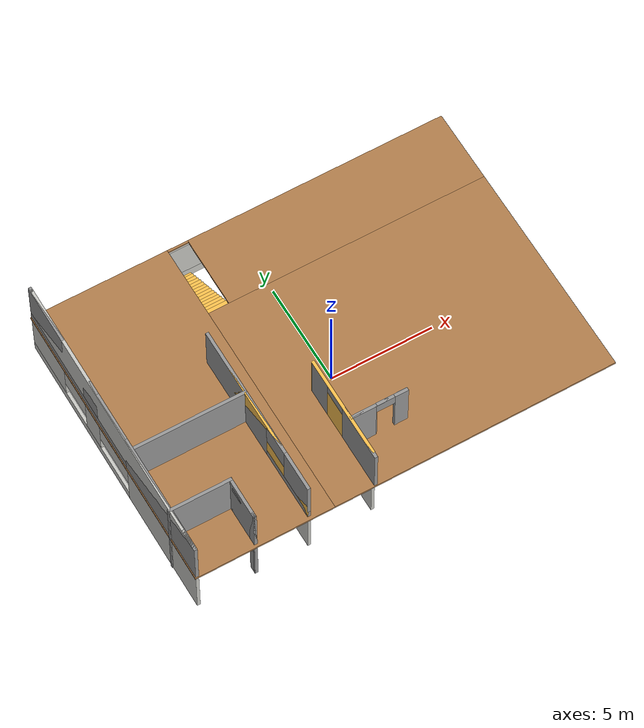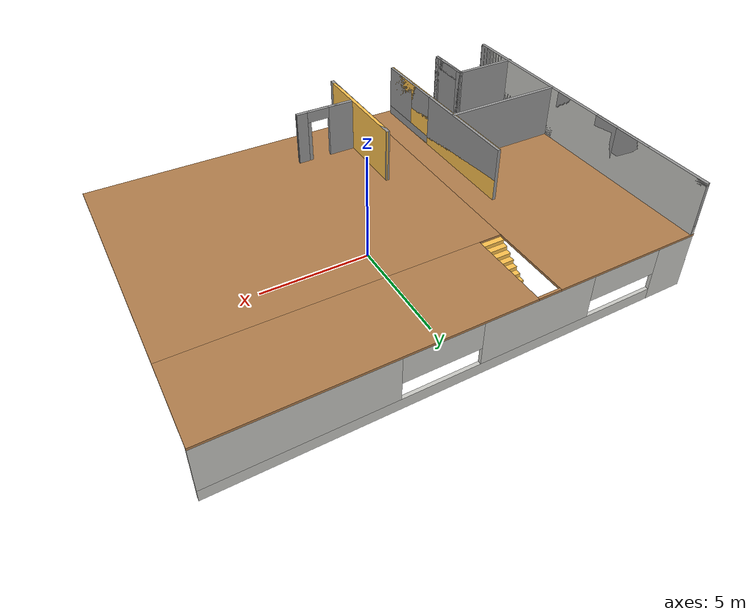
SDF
<sdf version="1.6">
 <model name="myProjectBuilding">
  <pose>-0.140832 0.553642 0 0 -0 0</pose>
  <link name="Floor_0">
   <pose>-0 -1e-06 2.5 0 -0 0</pose>
   <visual name="Floor_0_Visual_0">
    <pose>-6.8354 0 0.05 0 -0 0</pose>
    <geometry><box><size>6.61888 14.2917 0.1</size></box></geometry>
    <material>
     <script><uri>file://media/materials/scripts/gazebo.material</uri><name>Gazebo/Wood</name></script>
     <ambient>1 1 1 1</ambient>
    </material>
    <meta><layer>1</layer></meta>
   </visual>
   <collision name="Floor_0_Collision_0">
    <geometry><box><size>6.61888 14.2917 0.1</size></box></geometry>
    <pose>-6.8354 0 0.05 0 -0 0</pose>
   </collision>
   <visual name="Floor_0_Visual_1">
    <pose>3.30944 -1.80065 0.05 0 -0 0</pose>
    <geometry><box><size>13.6708 10.6904 0.1</size></box></geometry>
    <material>
     <script><uri>file://media/materials/scripts/gazebo.material</uri><name>Gazebo/Wood</name></script>
     <ambient>1 1 1 1</ambient>
    </material>
    <meta><layer>1</layer></meta>
   </visual>
   <collision name="Floor_0_Collision_1">
    <geometry><box><size>13.6708 10.6904 0.1</size></box></geometry>
    <pose>3.30944 -1.80065 0.05 0 -0 0</pose>
   </collision>
   <visual name="Floor_0_Visual_2">
    <pose>3.80944 5.3452 0.05 0 -0 0</pose>
    <geometry><box><size>12.6708 3.6013 0.1</size></box></geometry>
    <material>
     <script><uri>file://media/materials/scripts/gazebo.material</uri><name>Gazebo/Wood</name></script>
     <ambient>1 1 1 1</ambient>
    </material>
    <meta><layer>1</layer></meta>
   </visual>
   <collision name="Floor_0_Collision_2">
    <geometry><box><size>12.6708 3.6013 0.1</size></box></geometry>
    <pose>3.80944 5.3452 0.05 0 -0 0</pose>
   </collision>
   <visual name="Floor_0_Visual_3">
    <pose>-3.02596 7.0952 0.05 0 -0 0</pose>
    <geometry><box><size>1 0.101297 0.1</size></box></geometry>
    <material>
     <script><uri>file://media/materials/scripts/gazebo.material</uri><name>Gazebo/Wood</name></script>
     <ambient>1 1 1 1</ambient>
    </material>
    <meta><layer>1</layer></meta>
   </visual>
   <collision name="Floor_0_Collision_3">
    <geometry><box><size>1 0.101297 0.1</size></box></geometry>
    <pose>-3.02596 7.0952 0.05 0 -0 0</pose>
   </collision>
  </link>
  <link name="Stairs_0">
   <visual name="Stairs_0_Visual_0">
    <pose>-3.02596 6.92788 0.083333 0 -0 0</pose>
    <geometry><box><size>1 0.233333 0.166667</size></box></geometry>
    <material>
     <script><uri>file://media/materials/scripts/gazebo.material</uri><name>Gazebo/Grey</name></script>
     <ambient>1 0.764706 0.305882 1</ambient>
    </material>
    <meta><layer>0</layer></meta>
   </visual>
   <collision name="Stairs_0_Collision_0">
    <geometry><box><size>1 0.233333 0.166667</size></box></geometry>
    <pose>-3.02596 6.92788 0.083333 0 -0 0</pose>
   </collision>
   <visual name="Stairs_0_Visual_1">
    <pose>-3.02596 6.69455 0.25 0 -0 0</pose>
    <geometry><box><size>1 0.233333 0.166667</size></box></geometry>
    <material>
     <script><uri>file://media/materials/scripts/gazebo.material</uri><name>Gazebo/Grey</name></script>
     <ambient>1 0.764706 0.305882 1</ambient>
    </material>
    <meta><layer>0</layer></meta>
   </visual>
   <collision name="Stairs_0_Collision_1">
    <geometry><box><size>1 0.233333 0.166667</size></box></geometry>
    <pose>-3.02596 6.69455 0.25 0 -0 0</pose>
   </collision>
   <visual name="Stairs_0_Visual_2">
    <pose>-3.02596 6.46122 0.416667 0 -0 0</pose>
    <geometry><box><size>1 0.233333 0.166667</size></box></geometry>
    <material>
     <script><uri>file://media/materials/scripts/gazebo.material</uri><name>Gazebo/Grey</name></script>
     <ambient>1 0.764706 0.305882 1</ambient>
    </material>
    <meta><layer>0</layer></meta>
   </visual>
   <collision name="Stairs_0_Collision_2">
    <geometry><box><size>1 0.233333 0.166667</size></box></geometry>
    <pose>-3.02596 6.46122 0.416667 0 -0 0</pose>
   </collision>
   <visual name="Stairs_0_Visual_3">
    <pose>-3.02596 6.22788 0.583333 0 -0 0</pose>
    <geometry><box><size>1 0.233333 0.166667</size></box></geometry>
    <material>
     <script><uri>file://media/materials/scripts/gazebo.material</uri><name>Gazebo/Grey</name></script>
     <ambient>1 0.764706 0.305882 1</ambient>
    </material>
    <meta><layer>0</layer></meta>
   </visual>
   <collision name="Stairs_0_Collision_3">
    <geometry><box><size>1 0.233333 0.166667</size></box></geometry>
    <pose>-3.02596 6.22788 0.583333 0 -0 0</pose>
   </collision>
   <visual name="Stairs_0_Visual_4">
    <pose>-3.02596 5.99455 0.75 0 -0 0</pose>
    <geometry><box><size>1 0.233333 0.166667</size></box></geometry>
    <material>
     <script><uri>file://media/materials/scripts/gazebo.material</uri><name>Gazebo/Grey</name></script>
     <ambient>1 0.764706 0.305882 1</ambient>
    </material>
    <meta><layer>0</layer></meta>
   </visual>
   <collision name="Stairs_0_Collision_4">
    <geometry><box><size>1 0.233333 0.166667</size></box></geometry>
    <pose>-3.02596 5.99455 0.75 0 -0 0</pose>
   </collision>
   <visual name="Stairs_0_Visual_5">
    <pose>-3.02596 5.76122 0.916667 0 -0 0</pose>
    <geometry><box><size>1 0.233333 0.166667</size></box></geometry>
    <material>
     <script><uri>file://media/materials/scripts/gazebo.material</uri><name>Gazebo/Grey</name></script>
     <ambient>1 0.764706 0.305882 1</ambient>
    </material>
    <meta><layer>0</layer></meta>
   </visual>
   <collision name="Stairs_0_Collision_5">
    <geometry><box><size>1 0.233333 0.166667</size></box></geometry>
    <pose>-3.02596 5.76122 0.916667 0 -0 0</pose>
   </collision>
   <visual name="Stairs_0_Visual_6">
    <pose>-3.02596 5.52788 1.08333 0 -0 0</pose>
    <geometry><box><size>1 0.233333 0.166667</size></box></geometry>
    <material>
     <script><uri>file://media/materials/scripts/gazebo.material</uri><name>Gazebo/Grey</name></script>
     <ambient>1 0.764706 0.305882 1</ambient>
    </material>
    <meta><layer>0</layer></meta>
   </visual>
   <collision name="Stairs_0_Collision_6">
    <geometry><box><size>1 0.233333 0.166667</size></box></geometry>
    <pose>-3.02596 5.52788 1.08333 0 -0 0</pose>
   </collision>
   <visual name="Stairs_0_Visual_7">
    <pose>-3.02596 5.29455 1.25 0 -0 0</pose>
    <geometry><box><size>1 0.233333 0.166667</size></box></geometry>
    <material>
     <script><uri>file://media/materials/scripts/gazebo.material</uri><name>Gazebo/Grey</name></script>
     <ambient>1 0.764706 0.305882 1</ambient>
    </material>
    <meta><layer>0</layer></meta>
   </visual>
   <collision name="Stairs_0_Collision_7">
    <geometry><box><size>1 0.233333 0.166667</size></box></geometry>
    <pose>-3.02596 5.29455 1.25 0 -0 0</pose>
   </collision>
   <visual name="Stairs_0_Visual_8">
    <pose>-3.02596 5.06122 1.41667 0 -0 0</pose>
    <geometry><box><size>1 0.233333 0.166667</size></box></geometry>
    <material>
     <script><uri>file://media/materials/scripts/gazebo.material</uri><name>Gazebo/Grey</name></script>
     <ambient>1 0.764706 0.305882 1</ambient>
    </material>
    <meta><layer>0</layer></meta>
   </visual>
   <collision name="Stairs_0_Collision_8">
    <geometry><box><size>1 0.233333 0.166667</size></box></geometry>
    <pose>-3.02596 5.06122 1.41667 0 -0 0</pose>
   </collision>
   <visual name="Stairs_0_Visual_9">
    <pose>-3.02596 4.82788 1.58333 0 -0 0</pose>
    <geometry><box><size>1 0.233333 0.166667</size></box></geometry>
    <material>
     <script><uri>file://media/materials/scripts/gazebo.material</uri><name>Gazebo/Grey</name></script>
     <ambient>1 0.764706 0.305882 1</ambient>
    </material>
    <meta><layer>0</layer></meta>
   </visual>
   <collision name="Stairs_0_Collision_9">
    <geometry><box><size>1 0.233333 0.166667</size></box></geometry>
    <pose>-3.02596 4.82788 1.58333 0 -0 0</pose>
   </collision>
   <visual name="Stairs_0_Visual_10">
    <pose>-3.02596 4.59455 1.75 0 -0 0</pose>
    <geometry><box><size>1 0.233333 0.166667</size></box></geometry>
    <material>
     <script><uri>file://media/materials/scripts/gazebo.material</uri><name>Gazebo/Grey</name></script>
     <ambient>1 0.764706 0.305882 1</ambient>
    </material>
    <meta><layer>0</layer></meta>
   </visual>
   <collision name="Stairs_0_Collision_10">
    <geometry><box><size>1 0.233333 0.166667</size></box></geometry>
    <pose>-3.02596 4.59455 1.75 0 -0 0</pose>
   </collision>
   <visual name="Stairs_0_Visual_11">
    <pose>-3.02596 4.36122 1.91667 0 -0 0</pose>
    <geometry><box><size>1 0.233333 0.166667</size></box></geometry>
    <material>
     <script><uri>file://media/materials/scripts/gazebo.material</uri><name>Gazebo/Grey</name></script>
     <ambient>1 0.764706 0.305882 1</ambient>
    </material>
    <meta><layer>0</layer></meta>
   </visual>
   <collision name="Stairs_0_Collision_11">
    <geometry><box><size>1 0.233333 0.166667</size></box></geometry>
    <pose>-3.02596 4.36122 1.91667 0 -0 0</pose>
   </collision>
   <visual name="Stairs_0_Visual_12">
    <pose>-3.02596 4.12788 2.08333 0 -0 0</pose>
    <geometry><box><size>1 0.233333 0.166667</size></box></geometry>
    <material>
     <script><uri>file://media/materials/scripts/gazebo.material</uri><name>Gazebo/Grey</name></script>
     <ambient>1 0.764706 0.305882 1</ambient>
    </material>
    <meta><layer>0</layer></meta>
   </visual>
   <collision name="Stairs_0_Collision_12">
    <geometry><box><size>1 0.233333 0.166667</size></box></geometry>
    <pose>-3.02596 4.12788 2.08333 0 -0 0</pose>
   </collision>
   <visual name="Stairs_0_Visual_13">
    <pose>-3.02596 3.89455 2.25 0 -0 0</pose>
    <geometry><box><size>1 0.233333 0.166667</size></box></geometry>
    <material>
     <script><uri>file://media/materials/scripts/gazebo.material</uri><name>Gazebo/Grey</name></script>
     <ambient>1 0.764706 0.305882 1</ambient>
    </material>
    <meta><layer>0</layer></meta>
   </visual>
   <collision name="Stairs_0_Collision_13">
    <geometry><box><size>1 0.233333 0.166667</size></box></geometry>
    <pose>-3.02596 3.89455 2.25 0 -0 0</pose>
   </collision>
   <visual name="Stairs_0_Visual_14">
    <pose>-3.02596 3.66122 2.41667 0 -0 0</pose>
    <geometry><box><size>1 0.233333 0.166667</size></box></geometry>
    <material>
     <script><uri>file://media/materials/scripts/gazebo.material</uri><name>Gazebo/Grey</name></script>
     <ambient>1 0.764706 0.305882 1</ambient>
    </material>
    <meta><layer>0</layer></meta>
   </visual>
   <collision name="Stairs_0_Collision_14">
    <geometry><box><size>1 0.233333 0.166667</size></box></geometry>
    <pose>-3.02596 3.66122 2.41667 0 -0 0</pose>
   </collision>
  </link>
  <link name="Wall_0">
   <pose>0.019837 7.07085 0 0 -0 0</pose>
   <visual name="Wall_0_Visual_0">
    <pose>-9.23411 0 1.25 0 -0 0</pose>
    <geometry><box><size>1.78178 0.15 2.5</size></box></geometry>
    <material>
     <script><uri>file://media/materials/scripts/gazebo.material</uri><name>Gazebo/CeilingTiled</name></script>
     <ambient>1 1 1 1</ambient>
    </material>
    <meta><layer>0</layer></meta>
   </visual>
   <collision name="Wall_0_Collision_0">
    <geometry><box><size>1.78178 0.15 2.5</size></box></geometry>
    <pose>-9.23411 0 1.25 0 -0 0</pose>
   </collision>
   <visual name="Wall_0_Visual_1">
    <pose>0.890889 0 0.25 0 -0 0</pose>
    <geometry><box><size>18.4682 0.15 0.5</size></box></geometry>
    <material>
     <script><uri>file://media/materials/scripts/gazebo.material</uri><name>Gazebo/CeilingTiled</name></script>
     <ambient>1 1 1 1</ambient>
    </material>
    <meta><layer>0</layer></meta>
   </visual>
   <collision name="Wall_0_Collision_1">
    <geometry><box><size>18.4682 0.15 0.5</size></box></geometry>
    <pose>0.890889 0 0.25 0 -0 0</pose>
   </collision>
   <visual name="Wall_0_Visual_2">
    <pose>-2.70341 0 1.5 0 -0 0</pose>
    <geometry><box><size>4.90672 0.15 2</size></box></geometry>
    <material>
     <script><uri>file://media/materials/scripts/gazebo.material</uri><name>Gazebo/CeilingTiled</name></script>
     <ambient>1 1 1 1</ambient>
    </material>
    <meta><layer>0</layer></meta>
   </visual>
   <collision name="Wall_0_Collision_2">
    <geometry><box><size>4.90672 0.15 2</size></box></geometry>
    <pose>-2.70341 0 1.5 0 -0 0</pose>
   </collision>
   <visual name="Wall_0_Visual_3">
    <pose>6.55664 0 1.5 0 -0 0</pose>
    <geometry><box><size>7.13672 0.15 2</size></box></geometry>
    <material>
     <script><uri>file://media/materials/scripts/gazebo.material</uri><name>Gazebo/CeilingTiled</name></script>
     <ambient>1 1 1 1</ambient>
    </material>
    <meta><layer>0</layer></meta>
   </visual>
   <collision name="Wall_0_Collision_3">
    <geometry><box><size>7.13672 0.15 2</size></box></geometry>
    <pose>6.55664 0 1.5 0 -0 0</pose>
   </collision>
   <visual name="Wall_0_Visual_4">
    <pose>-6.75 0 1.9 0 -0 0</pose>
    <geometry><box><size>3.18645 0.15 1.2</size></box></geometry>
    <material>
     <script><uri>file://media/materials/scripts/gazebo.material</uri><name>Gazebo/CeilingTiled</name></script>
     <ambient>1 1 1 1</ambient>
    </material>
    <meta><layer>0</layer></meta>
   </visual>
   <collision name="Wall_0_Collision_4">
    <geometry><box><size>3.18645 0.15 1.2</size></box></geometry>
    <pose>-6.75 0 1.9 0 -0 0</pose>
   </collision>
   <visual name="Wall_0_Visual_5">
    <pose>1.36912 0 1.9 0 -0 0</pose>
    <geometry><box><size>3.23833 0.15 1.2</size></box></geometry>
    <material>
     <script><uri>file://media/materials/scripts/gazebo.material</uri><name>Gazebo/CeilingTiled</name></script>
     <ambient>1 1 1 1</ambient>
    </material>
    <meta><layer>0</layer></meta>
   </visual>
   <collision name="Wall_0_Collision_5">
    <geometry><box><size>3.23833 0.15 1.2</size></box></geometry>
    <pose>1.36912 0 1.9 0 -0 0</pose>
   </collision>
  </link>
  <link name="Wall_106">
   <pose>-10.0302 0.020848 2.5 0 -0 1.5708</pose>
   <visual name="Wall_106_Visual_0">
    <pose>-4.18101 0 1.25 0 -0 0</pose>
    <geometry><box><size>5.88798 0.15 2.5</size></box></geometry>
    <material>
     <script><uri>file://media/materials/scripts/gazebo.material</uri><name>Gazebo/Grey</name></script>
     <ambient>1 1 1 1</ambient>
    </material>
    <meta><layer>1</layer></meta>
   </visual>
   <collision name="Wall_106_Collision_0">
    <geometry><box><size>5.88798 0.15 2.5</size></box></geometry>
    <pose>-4.18101 0 1.25 0 -0 0</pose>
   </collision>
   <visual name="Wall_106_Visual_1">
    <pose>2.94399 0 0.25 0 -0 0</pose>
    <geometry><box><size>8.36202 0.15 0.5</size></box></geometry>
    <material>
     <script><uri>file://media/materials/scripts/gazebo.material</uri><name>Gazebo/Grey</name></script>
     <ambient>1 1 1 1</ambient>
    </material>
    <meta><layer>1</layer></meta>
   </visual>
   <collision name="Wall_106_Collision_1">
    <geometry><box><size>8.36202 0.15 0.5</size></box></geometry>
    <pose>2.94399 0 0.25 0 -0 0</pose>
   </collision>
   <visual name="Wall_106_Visual_2">
    <pose>1.81803 0 1.5 0 -0 0</pose>
    <geometry><box><size>1.21997 0.15 2</size></box></geometry>
    <material>
     <script><uri>file://media/materials/scripts/gazebo.material</uri><name>Gazebo/Grey</name></script>
     <ambient>1 1 1 1</ambient>
    </material>
    <meta><layer>1</layer></meta>
   </visual>
   <collision name="Wall_106_Collision_2">
    <geometry><box><size>1.21997 0.15 2</size></box></geometry>
    <pose>1.81803 0 1.5 0 -0 0</pose>
   </collision>
   <visual name="Wall_106_Visual_3">
    <pose>5.65137 0 1.5 0 -0 0</pose>
    <geometry><box><size>2.94726 0.15 2</size></box></geometry>
    <material>
     <script><uri>file://media/materials/scripts/gazebo.material</uri><name>Gazebo/Grey</name></script>
     <ambient>1 1 1 1</ambient>
    </material>
    <meta><layer>1</layer></meta>
   </visual>
   <collision name="Wall_106_Collision_3">
    <geometry><box><size>2.94726 0.15 2</size></box></geometry>
    <pose>5.65137 0 1.5 0 -0 0</pose>
   </collision>
   <visual name="Wall_106_Visual_4">
    <pose>-0.014489 0 1.9 0 -0 0</pose>
    <geometry><box><size>2.44507 0.15 1.2</size></box></geometry>
    <material>
     <script><uri>file://media/materials/scripts/gazebo.material</uri><name>Gazebo/Grey</name></script>
     <ambient>1 1 1 1</ambient>
    </material>
    <meta><layer>1</layer></meta>
   </visual>
   <collision name="Wall_106_Collision_4">
    <geometry><box><size>2.44507 0.15 1.2</size></box></geometry>
    <pose>-0.014489 0 1.9 0 -0 0</pose>
   </collision>
   <visual name="Wall_106_Visual_5">
    <pose>3.30288 0 1.9 0 -0 0</pose>
    <geometry><box><size>1.74973 0.15 1.2</size></box></geometry>
    <material>
     <script><uri>file://media/materials/scripts/gazebo.material</uri><name>Gazebo/Grey</name></script>
     <ambient>1 1 1 1</ambient>
    </material>
    <meta><layer>1</layer></meta>
   </visual>
   <collision name="Wall_106_Collision_5">
    <geometry><box><size>1.74973 0.15 1.2</size></box></geometry>
    <pose>3.30288 0 1.9 0 -0 0</pose>
   </collision>
  </link>
  <link name="Wall_108">
   <collision name="Wall_108_Collision">
    <geometry><box><size>5.5 0.15 2.5</size></box></geometry>
    <pose>0 0 1.25 0 -0 0</pose>
   </collision>
   <visual name="Wall_108_Visual">
    <pose>0 0 1.25 0 -0 0</pose>
    <geometry><box><size>5.5 0.15 2.5</size></box></geometry>
    <material>
     <script><uri>file://media/materials/scripts/gazebo.material</uri><name>Gazebo/Grey</name></script>
     <ambient>1 1 1 1</ambient>
    </material>
    <meta><layer>1</layer></meta>
   </visual>
   <pose>-7.35516 -1.737 2.5 0 -0 0</pose>
  </link>
  <link name="Wall_110">
   <pose>-4.67404 -2.738 2.5 0 -0 -1.5708</pose>
   <visual name="Wall_110_Visual_0">
    <pose>-1.69288 0 1.25 0 -0 0</pose>
    <geometry><box><size>5.11425 0.15 2.5</size></box></geometry>
    <material>
     <script><uri>file://media/materials/scripts/gazebo.material</uri><name>Gazebo/Grey</name></script>
     <ambient>1 1 1 1</ambient>
    </material>
    <meta><layer>1</layer></meta>
   </visual>
   <collision name="Wall_110_Collision_0">
    <geometry><box><size>5.11425 0.15 2.5</size></box></geometry>
    <pose>-1.69288 0 1.25 0 -0 0</pose>
   </collision>
   <visual name="Wall_110_Visual_1">
    <pose>2.55712 0 0.25 0 -0 0</pose>
    <geometry><box><size>3.38576 0.15 0.5</size></box></geometry>
    <material>
     <script><uri>file://media/materials/scripts/gazebo.material</uri><name>Gazebo/Grey</name></script>
     <ambient>1 1 1 1</ambient>
    </material>
    <meta><layer>1</layer></meta>
   </visual>
   <collision name="Wall_110_Collision_1">
    <geometry><box><size>3.38576 0.15 0.5</size></box></geometry>
    <pose>2.55712 0 0.25 0 -0 0</pose>
   </collision>
   <visual name="Wall_110_Visual_2">
    <pose>3.27954 0 1.5 0 -0 0</pose>
    <geometry><box><size>1.94093 0.15 2</size></box></geometry>
    <material>
     <script><uri>file://media/materials/scripts/gazebo.material</uri><name>Gazebo/Grey</name></script>
     <ambient>1 1 1 1</ambient>
    </material>
    <meta><layer>1</layer></meta>
   </visual>
   <collision name="Wall_110_Collision_2">
    <geometry><box><size>1.94093 0.15 2</size></box></geometry>
    <pose>3.27954 0 1.5 0 -0 0</pose>
   </collision>
   <visual name="Wall_110_Visual_3">
    <pose>1.58666 0 1.9 0 -0 0</pose>
    <geometry><box><size>1.44483 0.15 1.2</size></box></geometry>
    <material>
     <script><uri>file://media/materials/scripts/gazebo.material</uri><name>Gazebo/Grey</name></script>
     <ambient>1 1 1 1</ambient>
    </material>
    <meta><layer>1</layer></meta>
   </visual>
   <collision name="Wall_110_Collision_3">
    <geometry><box><size>1.44483 0.15 1.2</size></box></geometry>
    <pose>1.58666 0 1.9 0 -0 0</pose>
   </collision>
  </link>
  <link name="Wall_121">
   <pose>-1.54759 -4.48189 2.5 0 -0 1.5677</pose>
   <visual name="Wall_121_Visual_0">
    <pose>-1.28929 0 1.25 0 -0 0</pose>
    <geometry><box><size>2.66447 0.15 2.5</size></box></geometry>
    <material>
     <script><uri>file://media/materials/scripts/gazebo.material</uri><name>Gazebo/Grey</name></script>
     <ambient>1 1 1 1</ambient>
    </material>
    <meta><layer>1</layer></meta>
   </visual>
   <collision name="Wall_121_Collision_0">
    <geometry><box><size>2.66447 0.15 2.5</size></box></geometry>
    <pose>-1.28929 0 1.25 0 -0 0</pose>
   </collision>
   <visual name="Wall_121_Visual_1">
    <pose>1.94538 0 1.25 0 -0 0</pose>
    <geometry><box><size>1.35229 0.15 2.5</size></box></geometry>
    <material>
     <script><uri>file://media/materials/scripts/gazebo.material</uri><name>Gazebo/Grey</name></script>
     <ambient>1 1 1 1</ambient>
    </material>
    <meta><layer>1</layer></meta>
   </visual>
   <collision name="Wall_121_Collision_1">
    <geometry><box><size>1.35229 0.15 2.5</size></box></geometry>
    <pose>1.94538 0 1.25 0 -0 0</pose>
   </collision>
   <visual name="Wall_121_Visual_2">
    <pose>0.656093 0 2.25 0 -0 0</pose>
    <geometry><box><size>1.22628 0.15 0.5</size></box></geometry>
    <material>
     <script><uri>file://media/materials/scripts/gazebo.material</uri><name>Gazebo/Grey</name></script>
     <ambient>1 1 1 1</ambient>
    </material>
    <meta><layer>1</layer></meta>
   </visual>
   <collision name="Wall_121_Collision_2">
    <geometry><box><size>1.22628 0.15 0.5</size></box></geometry>
    <pose>0.656093 0 2.25 0 -0 0</pose>
   </collision>
  </link>
  <link name="Wall_132">
   <collision name="Wall_132_Collision">
    <geometry><box><size>3 0.15 2.5</size></box></geometry>
    <pose>0 0 1.25 0 -0 0</pose>
   </collision>
   <visual name="Wall_132_Visual">
    <pose>0 0 1.25 0 -0 0</pose>
    <geometry><box><size>3 0.15 2.5</size></box></geometry>
    <material>
     <script><uri>file://media/materials/scripts/gazebo.material</uri><name>Gazebo/Grey</name></script>
     <ambient>1 1 1 1</ambient>
    </material>
    <meta><layer>1</layer></meta>
   </visual>
   <pose>-8.64484 -4.99035 2.5 0 -0 0</pose>
  </link>
  <link name="Wall_133">
   <pose>-7.21984 -5.96535 2.5 0 -0 -1.5708</pose>
   <visual name="Wall_133_Visual_0">
    <pose>-0.897514 0 1.25 0 -0 0</pose>
    <geometry><box><size>0.304972 0.15 2.5</size></box></geometry>
    <material>
     <script><uri>file://media/materials/scripts/gazebo.material</uri><name>Gazebo/Grey</name></script>
     <ambient>1 1 1 1</ambient>
    </material>
    <meta><layer>1</layer></meta>
   </visual>
   <collision name="Wall_133_Collision_0">
    <geometry><box><size>0.304972 0.15 2.5</size></box></geometry>
    <pose>-0.897514 0 1.25 0 -0 0</pose>
   </collision>
   <visual name="Wall_133_Visual_1">
    <pose>0.869252 0 1.25 0 -0 0</pose>
    <geometry><box><size>0.361497 0.15 2.5</size></box></geometry>
    <material>
     <script><uri>file://media/materials/scripts/gazebo.material</uri><name>Gazebo/Grey</name></script>
     <ambient>1 1 1 1</ambient>
    </material>
    <meta><layer>1</layer></meta>
   </visual>
   <collision name="Wall_133_Collision_1">
    <geometry><box><size>0.361497 0.15 2.5</size></box></geometry>
    <pose>0.869252 0 1.25 0 -0 0</pose>
   </collision>
   <visual name="Wall_133_Visual_2">
    <pose>-0.028262 0 2.25 0 -0 0</pose>
    <geometry><box><size>1.43353 0.15 0.5</size></box></geometry>
    <material>
     <script><uri>file://media/materials/scripts/gazebo.material</uri><name>Gazebo/Grey</name></script>
     <ambient>1 1 1 1</ambient>
    </material>
    <meta><layer>1</layer></meta>
   </visual>
   <collision name="Wall_133_Collision_2">
    <geometry><box><size>1.43353 0.15 0.5</size></box></geometry>
    <pose>-0.028262 0 2.25 0 -0 0</pose>
   </collision>
  </link>
  <link name="Wall_135">
   <pose>-0.170115 -4.97572 2.5 0 -0 0.003751</pose>
   <visual name="Wall_135_Visual_0">
    <pose>-0.755146 0 1.25 0 -0 0</pose>
    <geometry><box><size>1.23971 0.15 2.5</size></box></geometry>
    <material>
     <script><uri>file://media/materials/scripts/gazebo.material</uri><name>Gazebo/Grey</name></script>
     <ambient>1 1 1 1</ambient>
    </material>
    <meta><layer>1</layer></meta>
   </visual>
   <collision name="Wall_135_Collision_0">
    <geometry><box><size>1.23971 0.15 2.5</size></box></geometry>
    <pose>-0.755146 0 1.25 0 -0 0</pose>
   </collision>
   <visual name="Wall_135_Visual_1">
    <pose>1.12918 0 1.25 0 -0 0</pose>
    <geometry><box><size>0.491644 0.15 2.5</size></box></geometry>
    <material>
     <script><uri>file://media/materials/scripts/gazebo.material</uri><name>Gazebo/Grey</name></script>
     <ambient>1 1 1 1</ambient>
    </material>
    <meta><layer>1</layer></meta>
   </visual>
   <collision name="Wall_135_Collision_1">
    <geometry><box><size>0.491644 0.15 2.5</size></box></geometry>
    <pose>1.12918 0 1.25 0 -0 0</pose>
   </collision>
   <visual name="Wall_135_Visual_2">
    <pose>0.374032 0 2.25 0 -0 0</pose>
    <geometry><box><size>1.01865 0.15 0.5</size></box></geometry>
    <material>
     <script><uri>file://media/materials/scripts/gazebo.material</uri><name>Gazebo/Grey</name></script>
     <ambient>1 1 1 1</ambient>
    </material>
    <meta><layer>1</layer></meta>
   </visual>
   <collision name="Wall_135_Collision_2">
    <geometry><box><size>1.01865 0.15 0.5</size></box></geometry>
    <pose>0.374032 0 2.25 0 -0 0</pose>
   </collision>
  </link>
  <link name="Wall_16">
   <pose>-1.53971 -4.36038 0 0 -0 -1.5708</pose>
   <visual name="Wall_16_Visual_0">
    <pose>-1.78192 0 1.25 0 -0 0</pose>
    <geometry><box><size>1.43616 0.15 2.5</size></box></geometry>
    <material>
     <script><uri>file://media/materials/scripts/gazebo.material</uri><name>Gazebo/CeilingTiled</name></script>
     <ambient>1 1 1 1</ambient>
    </material>
    <meta><layer>0</layer></meta>
   </visual>
   <collision name="Wall_16_Collision_0">
    <geometry><box><size>1.43616 0.15 2.5</size></box></geometry>
    <pose>-1.78192 0 1.25 0 -0 0</pose>
   </collision>
   <visual name="Wall_16_Visual_1">
    <pose>1.28998 0 1.25 0 -0 0</pose>
    <geometry><box><size>2.42005 0.15 2.5</size></box></geometry>
    <material>
     <script><uri>file://media/materials/scripts/gazebo.material</uri><name>Gazebo/CeilingTiled</name></script>
     <ambient>1 1 1 1</ambient>
    </material>
    <meta><layer>0</layer></meta>
   </visual>
   <collision name="Wall_16_Collision_1">
    <geometry><box><size>2.42005 0.15 2.5</size></box></geometry>
    <pose>1.28998 0 1.25 0 -0 0</pose>
   </collision>
   <visual name="Wall_16_Visual_2">
    <pose>-0.491942 0 2.25 0 -0 0</pose>
    <geometry><box><size>1.14379 0.15 0.5</size></box></geometry>
    <material>
     <script><uri>file://media/materials/scripts/gazebo.material</uri><name>Gazebo/CeilingTiled</name></script>
     <ambient>1 1 1 1</ambient>
    </material>
    <meta><layer>0</layer></meta>
   </visual>
   <collision name="Wall_16_Collision_2">
    <geometry><box><size>1.14379 0.15 0.5</size></box></geometry>
    <pose>-0.491942 0 2.25 0 -0 0</pose>
   </collision>
  </link>
  <link name="Wall_20">
   <pose>-0.170115 -4.9806 0 0 -0 0</pose>
   <visual name="Wall_20_Visual_0">
    <pose>-0.76608 0 1.25 0 -0 0</pose>
    <geometry><box><size>1.21784 0.15 2.5</size></box></geometry>
    <material>
     <script><uri>file://media/materials/scripts/gazebo.material</uri><name>Gazebo/Grey</name></script>
     <ambient>1 1 1 1</ambient>
    </material>
    <meta><layer>0</layer></meta>
   </visual>
   <collision name="Wall_20_Collision_0">
    <geometry><box><size>1.21784 0.15 2.5</size></box></geometry>
    <pose>-0.76608 0 1.25 0 -0 0</pose>
   </collision>
   <visual name="Wall_20_Visual_1">
    <pose>1.14181 0 1.25 0 -0 0</pose>
    <geometry><box><size>0.466381 0.15 2.5</size></box></geometry>
    <material>
     <script><uri>file://media/materials/scripts/gazebo.material</uri><name>Gazebo/Grey</name></script>
     <ambient>1 1 1 1</ambient>
    </material>
    <meta><layer>0</layer></meta>
   </visual>
   <collision name="Wall_20_Collision_1">
    <geometry><box><size>0.466381 0.15 2.5</size></box></geometry>
    <pose>1.14181 0 1.25 0 -0 0</pose>
   </collision>
   <visual name="Wall_20_Visual_2">
    <pose>0.375729 0 2.25 0 -0 0</pose>
    <geometry><box><size>1.06578 0.15 0.5</size></box></geometry>
    <material>
     <script><uri>file://media/materials/scripts/gazebo.material</uri><name>Gazebo/Grey</name></script>
     <ambient>1 1 1 1</ambient>
    </material>
    <meta><layer>0</layer></meta>
   </visual>
   <collision name="Wall_20_Collision_2">
    <geometry><box><size>1.06578 0.15 0.5</size></box></geometry>
    <pose>0.375729 0 2.25 0 -0 0</pose>
   </collision>
  </link>
  <link name="Wall_25">
   <collision name="Wall_25_Collision">
    <geometry><box><size>5.5 0.15 2.5</size></box></geometry>
    <pose>0 0 1.25 0 -0 0</pose>
   </collision>
   <visual name="Wall_25_Visual">
    <pose>0 0 1.25 0 -0 0</pose>
    <geometry><box><size>5.5 0.15 2.5</size></box></geometry>
    <material>
     <script><uri>file://media/materials/scripts/gazebo.material</uri><name>Gazebo/CeilingTiled</name></script>
     <ambient>1 0.764706 0.305882 1</ambient>
    </material>
    <meta><layer>0</layer></meta>
   </visual>
   <pose>-7.35516 -1.737 0 0 -0 0</pose>
  </link>
  <link name="Wall_27">
   <collision name="Wall_27_Collision">
    <geometry><box><size>3 0.15 2.5</size></box></geometry>
    <pose>0 0 1.25 0 -0 0</pose>
   </collision>
   <visual name="Wall_27_Visual">
    <pose>0 0 1.25 0 -0 0</pose>
    <geometry><box><size>3 0.15 2.5</size></box></geometry>
    <material>
     <script><uri>file://media/materials/scripts/gazebo.material</uri><name>Gazebo/Grey</name></script>
     <ambient>1 1 1 1</ambient>
    </material>
    <meta><layer>0</layer></meta>
   </visual>
   <pose>-8.64484 -4.99035 0 0 -0 0</pose>
  </link>
  <link name="Wall_29">
   <pose>-7.21984 -5.91535 0 0 -0 -1.5708</pose>
   <visual name="Wall_29_Visual_0">
    <pose>-0.84564 0 1.25 0 -0 0</pose>
    <geometry><box><size>0.308719 0.15 2.5</size></box></geometry>
    <material>
     <script><uri>file://media/materials/scripts/gazebo.material</uri><name>Gazebo/Grey</name></script>
     <ambient>1 1 1 1</ambient>
    </material>
    <meta><layer>0</layer></meta>
   </visual>
   <collision name="Wall_29_Collision_0">
    <geometry><box><size>0.308719 0.15 2.5</size></box></geometry>
    <pose>-0.84564 0 1.25 0 -0 0</pose>
   </collision>
   <visual name="Wall_29_Visual_1">
    <pose>0.858751 0 1.25 0 -0 0</pose>
    <geometry><box><size>0.282498 0.15 2.5</size></box></geometry>
    <material>
     <script><uri>file://media/materials/scripts/gazebo.material</uri><name>Gazebo/Grey</name></script>
     <ambient>1 1 1 1</ambient>
    </material>
    <meta><layer>0</layer></meta>
   </visual>
   <collision name="Wall_29_Collision_1">
    <geometry><box><size>0.282498 0.15 2.5</size></box></geometry>
    <pose>0.858751 0 1.25 0 -0 0</pose>
   </collision>
   <visual name="Wall_29_Visual_2">
    <pose>0.013111 0 2.25 0 -0 0</pose>
    <geometry><box><size>1.40878 0.15 0.5</size></box></geometry>
    <material>
     <script><uri>file://media/materials/scripts/gazebo.material</uri><name>Gazebo/Grey</name></script>
     <ambient>1 1 1 1</ambient>
    </material>
    <meta><layer>0</layer></meta>
   </visual>
   <collision name="Wall_29_Collision_2">
    <geometry><box><size>1.40878 0.15 0.5</size></box></geometry>
    <pose>0.013111 0 2.25 0 -0 0</pose>
   </collision>
  </link>
  <link name="Wall_3">
   <pose>-10.0302 0.020848 0 0 -0 1.5708</pose>
   <visual name="Wall_3_Visual_0">
    <pose>-4.2121 0 1.25 0 -0 0</pose>
    <geometry><box><size>5.8258 0.15 2.5</size></box></geometry>
    <material>
     <script><uri>file://media/materials/scripts/gazebo.material</uri><name>Gazebo/CeilingTiled</name></script>
     <ambient>1 1 1 1</ambient>
    </material>
    <meta><layer>0</layer></meta>
   </visual>
   <collision name="Wall_3_Collision_0">
    <geometry><box><size>5.8258 0.15 2.5</size></box></geometry>
    <pose>-4.2121 0 1.25 0 -0 0</pose>
   </collision>
   <visual name="Wall_3_Visual_1">
    <pose>2.9129 0 0.25 0 -0 0</pose>
    <geometry><box><size>8.4242 0.15 0.5</size></box></geometry>
    <material>
     <script><uri>file://media/materials/scripts/gazebo.material</uri><name>Gazebo/CeilingTiled</name></script>
     <ambient>1 1 1 1</ambient>
    </material>
    <meta><layer>0</layer></meta>
   </visual>
   <collision name="Wall_3_Collision_1">
    <geometry><box><size>8.4242 0.15 0.5</size></box></geometry>
    <pose>2.9129 0 0.25 0 -0 0</pose>
   </collision>
   <visual name="Wall_3_Visual_2">
    <pose>1.77697 0 1.5 0 -0 0</pose>
    <geometry><box><size>1.23791 0.15 2</size></box></geometry>
    <material>
     <script><uri>file://media/materials/scripts/gazebo.material</uri><name>Gazebo/CeilingTiled</name></script>
     <ambient>1 1 1 1</ambient>
    </material>
    <meta><layer>0</layer></meta>
   </visual>
   <collision name="Wall_3_Collision_2">
    <geometry><box><size>1.23791 0.15 2</size></box></geometry>
    <pose>1.77697 0 1.5 0 -0 0</pose>
   </collision>
   <visual name="Wall_3_Visual_3">
    <pose>5.68066 0 1.5 0 -0 0</pose>
    <geometry><box><size>2.88868 0.15 2</size></box></geometry>
    <material>
     <script><uri>file://media/materials/scripts/gazebo.material</uri><name>Gazebo/CeilingTiled</name></script>
     <ambient>1 1 1 1</ambient>
    </material>
    <meta><layer>0</layer></meta>
   </visual>
   <collision name="Wall_3_Collision_3">
    <geometry><box><size>2.88868 0.15 2</size></box></geometry>
    <pose>5.68066 0 1.5 0 -0 0</pose>
   </collision>
   <visual name="Wall_3_Visual_4">
    <pose>-0.070594 0 1.9 0 -0 0</pose>
    <geometry><box><size>2.45721 0.15 1.2</size></box></geometry>
    <material>
     <script><uri>file://media/materials/scripts/gazebo.material</uri><name>Gazebo/CeilingTiled</name></script>
     <ambient>1 1 1 1</ambient>
    </material>
    <meta><layer>0</layer></meta>
   </visual>
   <collision name="Wall_3_Collision_4">
    <geometry><box><size>2.45721 0.15 1.2</size></box></geometry>
    <pose>-0.070594 0 1.9 0 -0 0</pose>
   </collision>
   <visual name="Wall_3_Visual_5">
    <pose>3.31612 0 1.9 0 -0 0</pose>
    <geometry><box><size>1.8404 0.15 1.2</size></box></geometry>
    <material>
     <script><uri>file://media/materials/scripts/gazebo.material</uri><name>Gazebo/CeilingTiled</name></script>
     <ambient>1 1 1 1</ambient>
    </material>
    <meta><layer>0</layer></meta>
   </visual>
   <collision name="Wall_3_Collision_5">
    <geometry><box><size>1.8404 0.15 1.2</size></box></geometry>
    <pose>3.31612 0 1.9 0 -0 0</pose>
   </collision>
  </link>
  <link name="Wall_30">
   <collision name="Wall_30_Collision">
    <geometry><box><size>0.25 0.15 2.5</size></box></geometry>
    <pose>0 0 1.25 0 -0 0</pose>
   </collision>
   <visual name="Wall_30_Visual">
    <pose>0 0 1.25 0 -0 0</pose>
    <geometry><box><size>0.25 0.15 2.5</size></box></geometry>
    <material>
     <script><uri>file://media/materials/scripts/gazebo.material</uri><name>Gazebo/Grey</name></script>
     <ambient>1 1 1 1</ambient>
    </material>
    <meta><layer>0</layer></meta>
   </visual>
   <pose>-7.21984 -6.89035 0 0 -0 -1.5708</pose>
  </link>
  <link name="Wall_31">
   <collision name="Wall_31_Collision">
    <geometry><box><size>0.25 0.15 2.5</size></box></geometry>
    <pose>0 0 1.25 0 -0 0</pose>
   </collision>
   <visual name="Wall_31_Visual">
    <pose>0 0 1.25 0 -0 0</pose>
    <geometry><box><size>0.25 0.15 2.5</size></box></geometry>
    <material>
     <script><uri>file://media/materials/scripts/gazebo.material</uri><name>Gazebo/Grey</name></script>
     <ambient>1 1 1 1</ambient>
    </material>
    <meta><layer>0</layer></meta>
   </visual>
   <pose>-7.21984 -6.89035 0 0 -0 1.5708</pose>
  </link>
  <link name="Wall_44">
   <collision name="Wall_44_Collision">
    <geometry><box><size>14.25 0.15 2.5</size></box></geometry>
    <pose>0 0 1.25 0 -0 0</pose>
   </collision>
   <visual name="Wall_44_Visual">
    <pose>0 0 1.25 0 -0 0</pose>
    <geometry><box><size>14.25 0.15 2.5</size></box></geometry>
    <material>
     <script><uri>file://media/materials/scripts/gazebo.material</uri><name>Gazebo/CeilingTiled</name></script>
     <ambient>1 1 1 1</ambient>
    </material>
    <meta><layer>1</layer></meta>
   </visual>
   <pose>-10.0302 0.020848 2.5 0 -0 1.5708</pose>
  </link>
  <link name="Wall_45">
   <collision name="Wall_45_Collision">
    <geometry><box><size>8.5 0.15 2.5</size></box></geometry>
    <pose>0 0 1.25 0 -0 0</pose>
   </collision>
   <visual name="Wall_45_Visual">
    <pose>0 0 1.25 0 -0 0</pose>
    <geometry><box><size>8.5 0.15 2.5</size></box></geometry>
    <material>
     <script><uri>file://media/materials/scripts/gazebo.material</uri><name>Gazebo/Grey</name></script>
     <ambient>1 0.764706 0.305882 1</ambient>
    </material>
    <meta><layer>1</layer></meta>
   </visual>
   <pose>-4.67404 -2.738 2.5 0 -0 -1.5708</pose>
  </link>
  <link name="Wall_5">
   <pose>-4.67404 -2.738 0 0 -0 -1.5708</pose>
   <visual name="Wall_5_Visual_0">
    <pose>-1.66533 0 1.25 0 -0 0</pose>
    <geometry><box><size>5.16935 0.15 2.5</size></box></geometry>
    <material>
     <script><uri>file://media/materials/scripts/gazebo.material</uri><name>Gazebo/CeilingTiled</name></script>
     <ambient>1 1 1 1</ambient>
    </material>
    <meta><layer>0</layer></meta>
   </visual>
   <collision name="Wall_5_Collision_0">
    <geometry><box><size>5.16935 0.15 2.5</size></box></geometry>
    <pose>-1.66533 0 1.25 0 -0 0</pose>
   </collision>
   <visual name="Wall_5_Visual_1">
    <pose>3.27359 0 1.25 0 -0 0</pose>
    <geometry><box><size>1.95282 0.15 2.5</size></box></geometry>
    <material>
     <script><uri>file://media/materials/scripts/gazebo.material</uri><name>Gazebo/CeilingTiled</name></script>
     <ambient>1 1 1 1</ambient>
    </material>
    <meta><layer>0</layer></meta>
   </visual>
   <collision name="Wall_5_Collision_1">
    <geometry><box><size>1.95282 0.15 2.5</size></box></geometry>
    <pose>3.27359 0 1.25 0 -0 0</pose>
   </collision>
   <visual name="Wall_5_Visual_2">
    <pose>1.60827 0 2.25 0 -0 0</pose>
    <geometry><box><size>1.37783 0.15 0.5</size></box></geometry>
    <material>
     <script><uri>file://media/materials/scripts/gazebo.material</uri><name>Gazebo/CeilingTiled</name></script>
     <ambient>1 1 1 1</ambient>
    </material>
    <meta><layer>0</layer></meta>
   </visual>
   <collision name="Wall_5_Collision_2">
    <geometry><box><size>1.37783 0.15 0.5</size></box></geometry>
    <pose>1.60827 0 2.25 0 -0 0</pose>
   </collision>
  </link>
  <link name="Wall_51">
   <collision name="Wall_51_Collision">
    <geometry><box><size>5 0.15 2.5</size></box></geometry>
    <pose>0 0 1.25 0 -0 0</pose>
   </collision>
   <visual name="Wall_51_Visual">
    <pose>0 0 1.25 0 -0 0</pose>
    <geometry><box><size>5 0.15 2.5</size></box></geometry>
    <material>
     <script><uri>file://media/materials/scripts/gazebo.material</uri><name>Gazebo/Grey</name></script>
     <ambient>1 0.764706 0.305882 1</ambient>
    </material>
    <meta><layer>1</layer></meta>
   </visual>
   <pose>-1.53971 -4.36038 2.5 0 -0 -1.5708</pose>
  </link>
  <link name="Wall_52">
   <pose>-0.170115 -4.9806 2.5 0 -0 0</pose>
   <visual name="Wall_52_Visual_0">
    <pose>-0.777351 0 1.25 0 -0 0</pose>
    <geometry><box><size>1.1953 0.15 2.5</size></box></geometry>
    <material>
     <script><uri>file://media/materials/scripts/gazebo.material</uri><name>Gazebo/Grey</name></script>
     <ambient>1 1 1 1</ambient>
    </material>
    <meta><layer>1</layer></meta>
   </visual>
   <collision name="Wall_52_Collision_0">
    <geometry><box><size>1.1953 0.15 2.5</size></box></geometry>
    <pose>-0.777351 0 1.25 0 -0 0</pose>
   </collision>
   <visual name="Wall_52_Visual_1">
    <pose>1.04765 0 1.25 0 -0 0</pose>
    <geometry><box><size>0.654701 0.15 2.5</size></box></geometry>
    <material>
     <script><uri>file://media/materials/scripts/gazebo.material</uri><name>Gazebo/Grey</name></script>
     <ambient>1 1 1 1</ambient>
    </material>
    <meta><layer>1</layer></meta>
   </visual>
   <collision name="Wall_52_Collision_1">
    <geometry><box><size>0.654701 0.15 2.5</size></box></geometry>
    <pose>1.04765 0 1.25 0 -0 0</pose>
   </collision>
   <visual name="Wall_52_Visual_2">
    <pose>0.270299 0 2.25 0 -0 0</pose>
    <geometry><box><size>0.9 0.15 0.5</size></box></geometry>
    <material>
     <script><uri>file://media/materials/scripts/gazebo.material</uri><name>Gazebo/Grey</name></script>
     <ambient>1 1 1 1</ambient>
    </material>
    <meta><layer>1</layer></meta>
   </visual>
   <collision name="Wall_52_Collision_2">
    <geometry><box><size>0.9 0.15 0.5</size></box></geometry>
    <pose>0.270299 0 2.25 0 -0 0</pose>
   </collision>
  </link>
  <link name="Wall_54">
   <collision name="Wall_54_Collision">
    <geometry><box><size>5.5 0.15 2.5</size></box></geometry>
    <pose>0 0 1.25 0 -0 0</pose>
   </collision>
   <visual name="Wall_54_Visual">
    <pose>0 0 1.25 0 -0 0</pose>
    <geometry><box><size>5.5 0.15 2.5</size></box></geometry>
    <material>
     <script><uri>file://media/materials/scripts/gazebo.material</uri><name>Gazebo/CeilingTiled</name></script>
     <ambient>1 1 1 1</ambient>
    </material>
    <meta><layer>1</layer></meta>
   </visual>
   <pose>-7.35516 -1.737 2.5 0 -0 0</pose>
  </link>
  <link name="Wall_55">
   <collision name="Wall_55_Collision">
    <geometry><box><size>3 0.15 2.5</size></box></geometry>
    <pose>0 0 1.25 0 -0 0</pose>
   </collision>
   <visual name="Wall_55_Visual">
    <pose>0 0 1.25 0 -0 0</pose>
    <geometry><box><size>3 0.15 2.5</size></box></geometry>
    <material>
     <script><uri>file://media/materials/scripts/gazebo.material</uri><name>Gazebo/Grey</name></script>
     <ambient>1 1 1 1</ambient>
    </material>
    <meta><layer>1</layer></meta>
   </visual>
   <pose>-8.64484 -4.99035 2.5 0 -0 0</pose>
  </link>
  <link name="Wall_56">
   <collision name="Wall_56_Collision">
    <geometry><box><size>2 0.15 2.5</size></box></geometry>
    <pose>0 0 1.25 0 -0 0</pose>
   </collision>
   <visual name="Wall_56_Visual">
    <pose>0 0 1.25 0 -0 0</pose>
    <geometry><box><size>2 0.15 2.5</size></box></geometry>
    <material>
     <script><uri>file://media/materials/scripts/gazebo.material</uri><name>Gazebo/Grey</name></script>
     <ambient>1 1 1 1</ambient>
    </material>
    <meta><layer>1</layer></meta>
   </visual>
   <pose>-7.21984 -5.91535 2.5 0 -0 -1.5708</pose>
  </link>
  <link name="Wall_57">
   <collision name="Wall_57_Collision">
    <geometry><box><size>0.25 0.15 2.5</size></box></geometry>
    <pose>0 0 1.25 0 -0 0</pose>
   </collision>
   <visual name="Wall_57_Visual">
    <pose>0 0 1.25 0 -0 0</pose>
    <geometry><box><size>0.25 0.15 2.5</size></box></geometry>
    <material>
     <script><uri>file://media/materials/scripts/gazebo.material</uri><name>Gazebo/Grey</name></script>
     <ambient>1 1 1 1</ambient>
    </material>
    <meta><layer>1</layer></meta>
   </visual>
   <pose>-7.21984 -6.89035 2.5 0 -0 -1.5708</pose>
  </link>
  <link name="Wall_58">
   <collision name="Wall_58_Collision">
    <geometry><box><size>0.25 0.15 2.5</size></box></geometry>
    <pose>0 0 1.25 0 -0 0</pose>
   </collision>
   <visual name="Wall_58_Visual">
    <pose>0 0 1.25 0 -0 0</pose>
    <geometry><box><size>0.25 0.15 2.5</size></box></geometry>
    <material>
     <script><uri>file://media/materials/scripts/gazebo.material</uri><name>Gazebo/Grey</name></script>
     <ambient>1 1 1 1</ambient>
    </material>
    <meta><layer>1</layer></meta>
   </visual>
   <pose>-7.21984 -6.89035 2.5 0 -0 1.5708</pose>
  </link>
  <static>1</static>
 </model>
</sdf>
